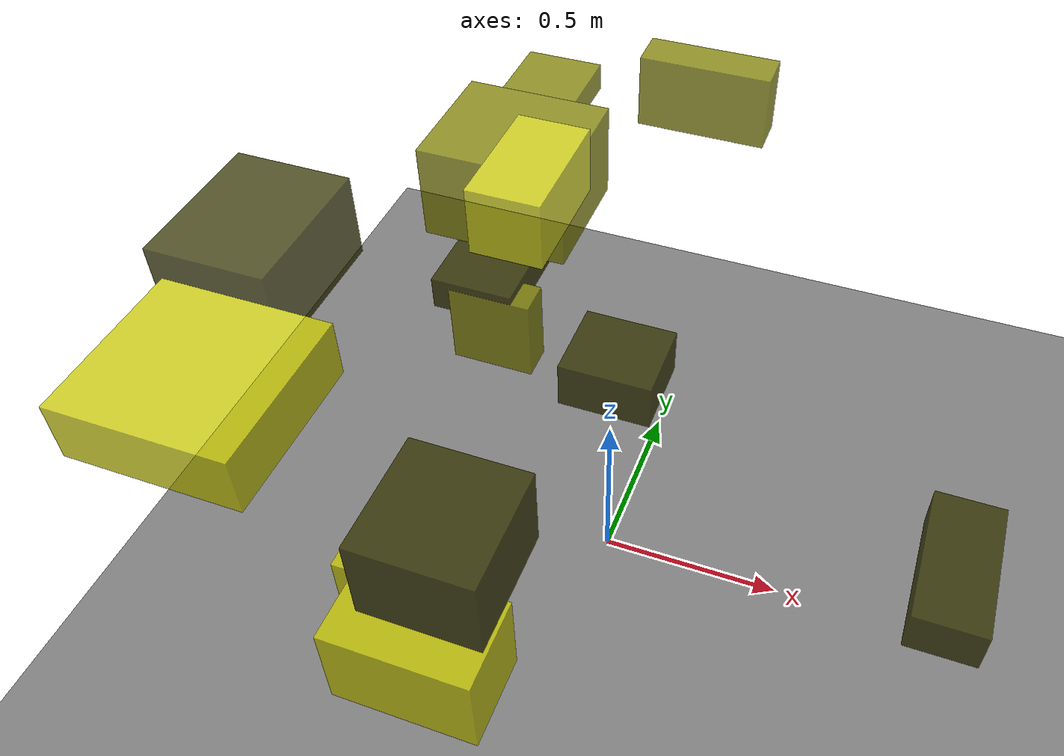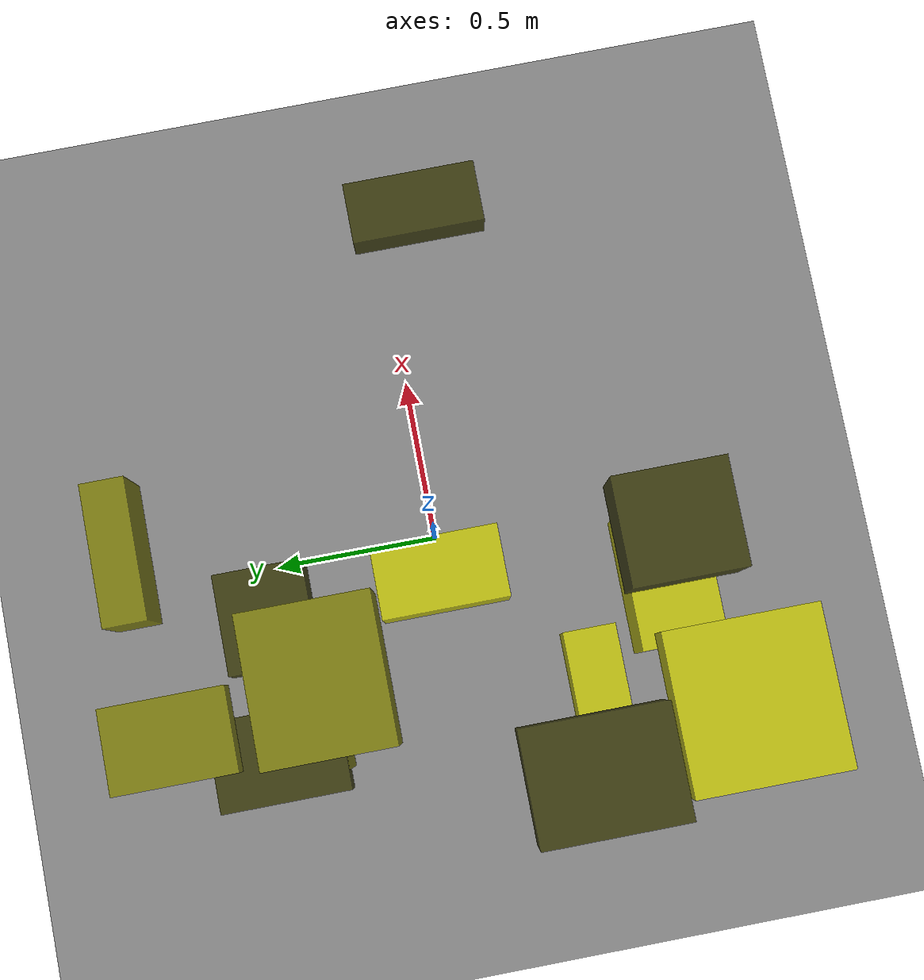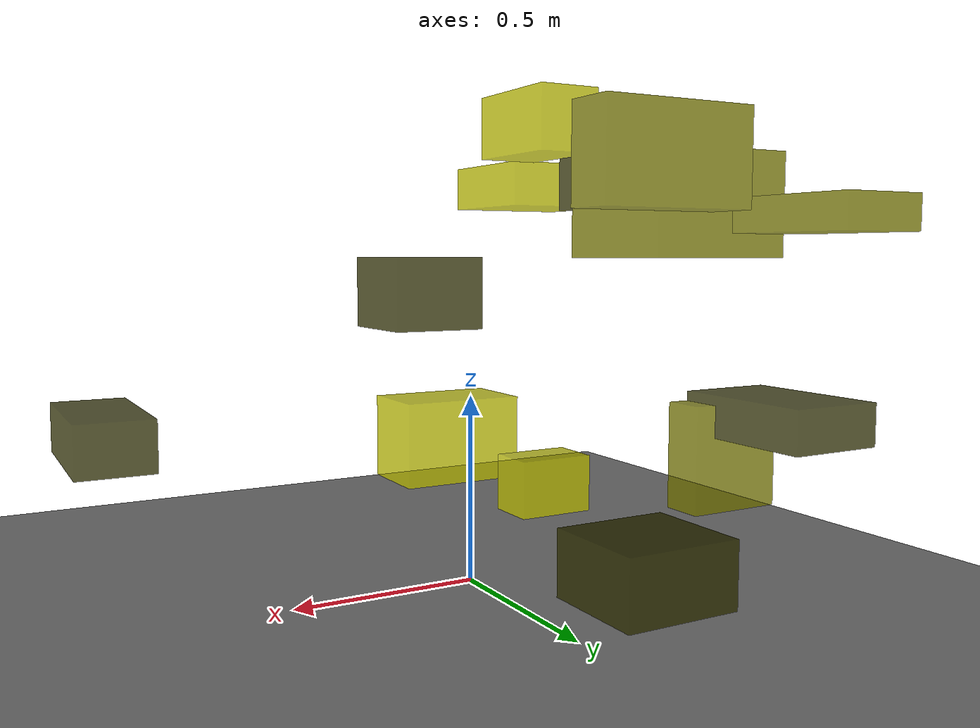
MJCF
<?xml version="1.0"?>
<mujoco model="obstacle_scene">
  <compiler angle="radian" coordinate="local"/>
  <option timestep="0.001" gravity="0 0 -9.81"/>

  <asset>
    <material name="obstacle_mat" rgba="0.8 0.8 0.0 0.8"/>
    <material name="ground_mat" rgba="0.5 0.5 0.5 1"/>
  </asset>

  <worldbody>
    <!-- Ground plane -->
    <geom name="ground" type="plane" size="3 3 0.1" material="ground_mat"/>

    <!-- Obstacles -->
    <body name="obstacle_0" pos="-0.737942 -0.286963 1.126714">
      <geom name="obs_0" type="box" size="0.143309 0.183825 0.105792" rgba="0.2 0.2 0.0 0.8"/>
    </body>
    <body name="obstacle_1" pos="0.003938 0.772406 1.066349">
      <geom name="obs_1" type="box" size="0.177974 0.055192 0.102370" rgba="0.5 0.5 0.0 0.8"/>
    </body>
    <body name="obstacle_2" pos="-0.268496 -0.647148 0.267986">
      <geom name="obs_2" type="box" size="0.200757 0.123719 0.134829" rgba="0.8 0.8 0.0 0.8"/>
    </body>
    <body name="obstacle_3" pos="-0.157907 -0.634724 0.752063">
      <geom name="obs_3" type="box" size="0.149695 0.156849 0.114520" rgba="0.2 0.2 0.0 0.8"/>
    </body>
    <body name="obstacle_4" pos="-0.464333 0.747275 0.964447">
      <geom name="obs_4" type="box" size="0.110074 0.161583 0.040359" rgba="0.5 0.5 0.0 0.8"/>
    </body>
    <body name="obstacle_5" pos="-0.636056 -0.682716 1.106707">
      <geom name="obs_5" type="box" size="0.202745 0.195320 0.070890" rgba="0.8 0.8 0.0 0.8"/>
    </body>
    <body name="obstacle_6" pos="-0.561763 0.537851 0.476164">
      <geom name="obs_6" type="box" size="0.126899 0.183787 0.053145" rgba="0.2 0.2 0.0 0.8"/>
    </body>
    <body name="obstacle_7" pos="-0.388386 0.350725 0.996837">
      <geom name="obs_7" type="box" size="0.193861 0.170131 0.128655" rgba="0.5 0.5 0.0 0.8"/>
    </body>
    <body name="obstacle_8" pos="-0.201451 0.005857 1.222899">
      <geom name="obs_8" type="box" size="0.086770 0.152129 0.084220" rgba="0.8 0.8 0.0 0.8"/>
    </body>
    <body name="obstacle_9" pos="0.921906 -0.118560 0.452627">
      <geom name="obs_9" type="box" size="0.089298 0.192547 0.061151" rgba="0.2 0.2 0.0 0.8"/>
    </body>
    <body name="obstacle_10" pos="-0.506619 0.404992 0.369053">
      <geom name="obs_10" type="box" size="0.128401 0.052443 0.135420" rgba="0.5 0.5 0.0 0.8"/>
    </body>
    <body name="obstacle_11" pos="-0.493943 -0.398520 0.135117">
      <geom name="obs_11" type="box" size="0.125281 0.079337 0.090626" rgba="0.8 0.8 0.0 0.8"/>
    </body>
    <body name="obstacle_12" pos="-0.158666 0.540539 0.157692">
      <geom name="obs_12" type="box" size="0.152821 0.135848 0.082889" rgba="0.2 0.2 0.0 0.8"/>
    </body>
  </worldbody>
</mujoco>
